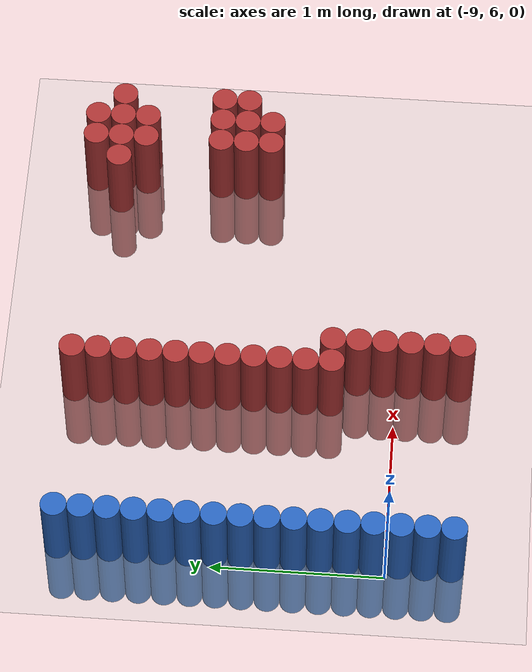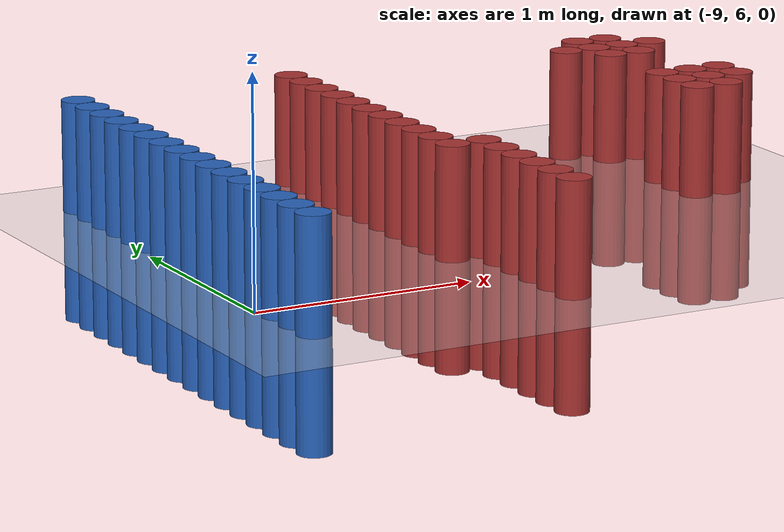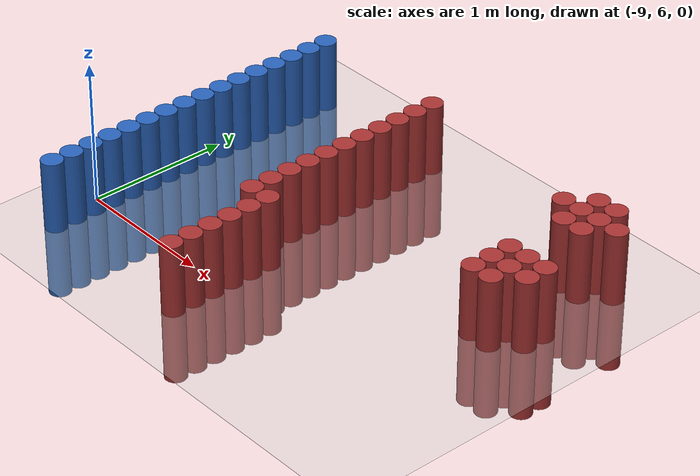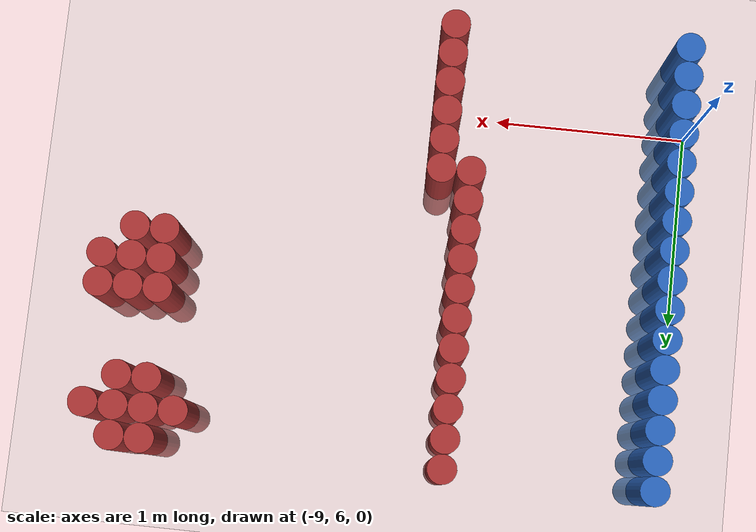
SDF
<sdf version="1.6">
 <world name="default">
  <model name="ground_plane">
   <static>1</static>
   <link name="link">
    <collision name="collision">
     <geometry><plane><normal>0 0 1</normal><size>100 100</size></plane></geometry>
     <surface><friction><ode><mu>100</mu><mu2>50</mu2></ode></friction></surface>
    </collision>
    <visual name="visual">
     <cast_shadows>0</cast_shadows>
     <geometry><plane><normal>0 0 1</normal><size>100 100</size></plane></geometry>
     <material>
      <script><uri>file://media/materials/scripts/gazebo.material</uri><name>Gazebo/Grey</name></script>
     </material>
    </visual>
   </link>
  </model>
  <model name="unit_cylinder_128">
   <static>1</static>
   <pose>-8.925000 5.625000 0.000000 0.000000 0.000000 0.000000</pose>
   <link name="link">
    <inertial>
     <mass>1</mass>
     <inertia><ixx>0.145833</ixx><ixy>0</ixy><ixz>0</ixz><iyy>0.145833</iyy><iyz>0</iyz><izz>0.125</izz></inertia>
    </inertial>
    <collision name="collision">
     <geometry><cylinder><radius>0.075000</radius><length>1</length></cylinder></geometry>
    </collision>
    <visual name="visual">
     <geometry><cylinder><radius>0.075000</radius><length>1</length></cylinder></geometry>
     <material>
      <ambient>0.152000 0.379000 0.720000 1</ambient>
      <diffuse>0.152000 0.379000 0.720000 1</diffuse>
     </material>
     <material>
      <script><name>Gazebo/Grey</name><uri>file://media/materials/scripts/gazebo.material</uri></script>
     </material>
    </visual>
   </link>
  </model>
  <model name="unit_cylinder_129">
   <static>1</static>
   <pose>-8.925000 5.775000 0.000000 0.000000 0.000000 0.000000</pose>
   <link name="link">
    <inertial>
     <mass>1</mass>
     <inertia><ixx>0.145833</ixx><ixy>0</ixy><ixz>0</ixz><iyy>0.145833</iyy><iyz>0</iyz><izz>0.125</izz></inertia>
    </inertial>
    <collision name="collision">
     <geometry><cylinder><radius>0.075000</radius><length>1</length></cylinder></geometry>
    </collision>
    <visual name="visual">
     <geometry><cylinder><radius>0.075000</radius><length>1</length></cylinder></geometry>
     <material>
      <ambient>0.152000 0.379000 0.720000 1</ambient>
      <diffuse>0.152000 0.379000 0.720000 1</diffuse>
     </material>
     <material>
      <script><name>Gazebo/Grey</name><uri>file://media/materials/scripts/gazebo.material</uri></script>
     </material>
    </visual>
   </link>
  </model>
  <model name="unit_cylinder_130">
   <static>1</static>
   <pose>-8.925000 5.925000 0.000000 0.000000 0.000000 0.000000</pose>
   <link name="link">
    <inertial>
     <mass>1</mass>
     <inertia><ixx>0.145833</ixx><ixy>0</ixy><ixz>0</ixz><iyy>0.145833</iyy><iyz>0</iyz><izz>0.125</izz></inertia>
    </inertial>
    <collision name="collision">
     <geometry><cylinder><radius>0.075000</radius><length>1</length></cylinder></geometry>
    </collision>
    <visual name="visual">
     <geometry><cylinder><radius>0.075000</radius><length>1</length></cylinder></geometry>
     <material>
      <ambient>0.152000 0.379000 0.720000 1</ambient>
      <diffuse>0.152000 0.379000 0.720000 1</diffuse>
     </material>
     <material>
      <script><name>Gazebo/Grey</name><uri>file://media/materials/scripts/gazebo.material</uri></script>
     </material>
    </visual>
   </link>
  </model>
  <model name="unit_cylinder_131">
   <static>1</static>
   <pose>-8.925000 6.075000 0.000000 0.000000 0.000000 0.000000</pose>
   <link name="link">
    <inertial>
     <mass>1</mass>
     <inertia><ixx>0.145833</ixx><ixy>0</ixy><ixz>0</ixz><iyy>0.145833</iyy><iyz>0</iyz><izz>0.125</izz></inertia>
    </inertial>
    <collision name="collision">
     <geometry><cylinder><radius>0.075000</radius><length>1</length></cylinder></geometry>
    </collision>
    <visual name="visual">
     <geometry><cylinder><radius>0.075000</radius><length>1</length></cylinder></geometry>
     <material>
      <ambient>0.152000 0.379000 0.720000 1</ambient>
      <diffuse>0.152000 0.379000 0.720000 1</diffuse>
     </material>
     <material>
      <script><name>Gazebo/Grey</name><uri>file://media/materials/scripts/gazebo.material</uri></script>
     </material>
    </visual>
   </link>
  </model>
  <model name="unit_cylinder_132">
   <static>1</static>
   <pose>-8.925000 6.225000 0.000000 0.000000 0.000000 0.000000</pose>
   <link name="link">
    <inertial>
     <mass>1</mass>
     <inertia><ixx>0.145833</ixx><ixy>0</ixy><ixz>0</ixz><iyy>0.145833</iyy><iyz>0</iyz><izz>0.125</izz></inertia>
    </inertial>
    <collision name="collision">
     <geometry><cylinder><radius>0.075000</radius><length>1</length></cylinder></geometry>
    </collision>
    <visual name="visual">
     <geometry><cylinder><radius>0.075000</radius><length>1</length></cylinder></geometry>
     <material>
      <ambient>0.152000 0.379000 0.720000 1</ambient>
      <diffuse>0.152000 0.379000 0.720000 1</diffuse>
     </material>
     <material>
      <script><name>Gazebo/Grey</name><uri>file://media/materials/scripts/gazebo.material</uri></script>
     </material>
    </visual>
   </link>
  </model>
  <model name="unit_cylinder_133">
   <static>1</static>
   <pose>-8.925000 6.375000 0.000000 0.000000 0.000000 0.000000</pose>
   <link name="link">
    <inertial>
     <mass>1</mass>
     <inertia><ixx>0.145833</ixx><ixy>0</ixy><ixz>0</ixz><iyy>0.145833</iyy><iyz>0</iyz><izz>0.125</izz></inertia>
    </inertial>
    <collision name="collision">
     <geometry><cylinder><radius>0.075000</radius><length>1</length></cylinder></geometry>
    </collision>
    <visual name="visual">
     <geometry><cylinder><radius>0.075000</radius><length>1</length></cylinder></geometry>
     <material>
      <ambient>0.152000 0.379000 0.720000 1</ambient>
      <diffuse>0.152000 0.379000 0.720000 1</diffuse>
     </material>
     <material>
      <script><name>Gazebo/Grey</name><uri>file://media/materials/scripts/gazebo.material</uri></script>
     </material>
    </visual>
   </link>
  </model>
  <model name="unit_cylinder_134">
   <static>1</static>
   <pose>-8.925000 6.525000 0.000000 0.000000 0.000000 0.000000</pose>
   <link name="link">
    <inertial>
     <mass>1</mass>
     <inertia><ixx>0.145833</ixx><ixy>0</ixy><ixz>0</ixz><iyy>0.145833</iyy><iyz>0</iyz><izz>0.125</izz></inertia>
    </inertial>
    <collision name="collision">
     <geometry><cylinder><radius>0.075000</radius><length>1</length></cylinder></geometry>
    </collision>
    <visual name="visual">
     <geometry><cylinder><radius>0.075000</radius><length>1</length></cylinder></geometry>
     <material>
      <ambient>0.152000 0.379000 0.720000 1</ambient>
      <diffuse>0.152000 0.379000 0.720000 1</diffuse>
     </material>
     <material>
      <script><name>Gazebo/Grey</name><uri>file://media/materials/scripts/gazebo.material</uri></script>
     </material>
    </visual>
   </link>
  </model>
  <model name="unit_cylinder_135">
   <static>1</static>
   <pose>-8.925000 6.675000 0.000000 0.000000 0.000000 0.000000</pose>
   <link name="link">
    <inertial>
     <mass>1</mass>
     <inertia><ixx>0.145833</ixx><ixy>0</ixy><ixz>0</ixz><iyy>0.145833</iyy><iyz>0</iyz><izz>0.125</izz></inertia>
    </inertial>
    <collision name="collision">
     <geometry><cylinder><radius>0.075000</radius><length>1</length></cylinder></geometry>
    </collision>
    <visual name="visual">
     <geometry><cylinder><radius>0.075000</radius><length>1</length></cylinder></geometry>
     <material>
      <ambient>0.152000 0.379000 0.720000 1</ambient>
      <diffuse>0.152000 0.379000 0.720000 1</diffuse>
     </material>
     <material>
      <script><name>Gazebo/Grey</name><uri>file://media/materials/scripts/gazebo.material</uri></script>
     </material>
    </visual>
   </link>
  </model>
  <model name="unit_cylinder_136">
   <static>1</static>
   <pose>-8.925000 6.825000 0.000000 0.000000 0.000000 0.000000</pose>
   <link name="link">
    <inertial>
     <mass>1</mass>
     <inertia><ixx>0.145833</ixx><ixy>0</ixy><ixz>0</ixz><iyy>0.145833</iyy><iyz>0</iyz><izz>0.125</izz></inertia>
    </inertial>
    <collision name="collision">
     <geometry><cylinder><radius>0.075000</radius><length>1</length></cylinder></geometry>
    </collision>
    <visual name="visual">
     <geometry><cylinder><radius>0.075000</radius><length>1</length></cylinder></geometry>
     <material>
      <ambient>0.152000 0.379000 0.720000 1</ambient>
      <diffuse>0.152000 0.379000 0.720000 1</diffuse>
     </material>
     <material>
      <script><name>Gazebo/Grey</name><uri>file://media/materials/scripts/gazebo.material</uri></script>
     </material>
    </visual>
   </link>
  </model>
  <model name="unit_cylinder_137">
   <static>1</static>
   <pose>-8.925000 6.975000 0.000000 0.000000 0.000000 0.000000</pose>
   <link name="link">
    <inertial>
     <mass>1</mass>
     <inertia><ixx>0.145833</ixx><ixy>0</ixy><ixz>0</ixz><iyy>0.145833</iyy><iyz>0</iyz><izz>0.125</izz></inertia>
    </inertial>
    <collision name="collision">
     <geometry><cylinder><radius>0.075000</radius><length>1</length></cylinder></geometry>
    </collision>
    <visual name="visual">
     <geometry><cylinder><radius>0.075000</radius><length>1</length></cylinder></geometry>
     <material>
      <ambient>0.152000 0.379000 0.720000 1</ambient>
      <diffuse>0.152000 0.379000 0.720000 1</diffuse>
     </material>
     <material>
      <script><name>Gazebo/Grey</name><uri>file://media/materials/scripts/gazebo.material</uri></script>
     </material>
    </visual>
   </link>
  </model>
  <model name="unit_cylinder_138">
   <static>1</static>
   <pose>-8.925000 7.125000 0.000000 0.000000 0.000000 0.000000</pose>
   <link name="link">
    <inertial>
     <mass>1</mass>
     <inertia><ixx>0.145833</ixx><ixy>0</ixy><ixz>0</ixz><iyy>0.145833</iyy><iyz>0</iyz><izz>0.125</izz></inertia>
    </inertial>
    <collision name="collision">
     <geometry><cylinder><radius>0.075000</radius><length>1</length></cylinder></geometry>
    </collision>
    <visual name="visual">
     <geometry><cylinder><radius>0.075000</radius><length>1</length></cylinder></geometry>
     <material>
      <ambient>0.152000 0.379000 0.720000 1</ambient>
      <diffuse>0.152000 0.379000 0.720000 1</diffuse>
     </material>
     <material>
      <script><name>Gazebo/Grey</name><uri>file://media/materials/scripts/gazebo.material</uri></script>
     </material>
    </visual>
   </link>
  </model>
  <model name="unit_cylinder_139">
   <static>1</static>
   <pose>-8.925000 7.275000 0.000000 0.000000 0.000000 0.000000</pose>
   <link name="link">
    <inertial>
     <mass>1</mass>
     <inertia><ixx>0.145833</ixx><ixy>0</ixy><ixz>0</ixz><iyy>0.145833</iyy><iyz>0</iyz><izz>0.125</izz></inertia>
    </inertial>
    <collision name="collision">
     <geometry><cylinder><radius>0.075000</radius><length>1</length></cylinder></geometry>
    </collision>
    <visual name="visual">
     <geometry><cylinder><radius>0.075000</radius><length>1</length></cylinder></geometry>
     <material>
      <ambient>0.152000 0.379000 0.720000 1</ambient>
      <diffuse>0.152000 0.379000 0.720000 1</diffuse>
     </material>
     <material>
      <script><name>Gazebo/Grey</name><uri>file://media/materials/scripts/gazebo.material</uri></script>
     </material>
    </visual>
   </link>
  </model>
  <model name="unit_cylinder_140">
   <static>1</static>
   <pose>-8.925000 7.425000 0.000000 0.000000 0.000000 0.000000</pose>
   <link name="link">
    <inertial>
     <mass>1</mass>
     <inertia><ixx>0.145833</ixx><ixy>0</ixy><ixz>0</ixz><iyy>0.145833</iyy><iyz>0</iyz><izz>0.125</izz></inertia>
    </inertial>
    <collision name="collision">
     <geometry><cylinder><radius>0.075000</radius><length>1</length></cylinder></geometry>
    </collision>
    <visual name="visual">
     <geometry><cylinder><radius>0.075000</radius><length>1</length></cylinder></geometry>
     <material>
      <ambient>0.152000 0.379000 0.720000 1</ambient>
      <diffuse>0.152000 0.379000 0.720000 1</diffuse>
     </material>
     <material>
      <script><name>Gazebo/Grey</name><uri>file://media/materials/scripts/gazebo.material</uri></script>
     </material>
    </visual>
   </link>
  </model>
  <model name="unit_cylinder_141">
   <static>1</static>
   <pose>-8.925000 7.575000 0.000000 0.000000 0.000000 0.000000</pose>
   <link name="link">
    <inertial>
     <mass>1</mass>
     <inertia><ixx>0.145833</ixx><ixy>0</ixy><ixz>0</ixz><iyy>0.145833</iyy><iyz>0</iyz><izz>0.125</izz></inertia>
    </inertial>
    <collision name="collision">
     <geometry><cylinder><radius>0.075000</radius><length>1</length></cylinder></geometry>
    </collision>
    <visual name="visual">
     <geometry><cylinder><radius>0.075000</radius><length>1</length></cylinder></geometry>
     <material>
      <ambient>0.152000 0.379000 0.720000 1</ambient>
      <diffuse>0.152000 0.379000 0.720000 1</diffuse>
     </material>
     <material>
      <script><name>Gazebo/Grey</name><uri>file://media/materials/scripts/gazebo.material</uri></script>
     </material>
    </visual>
   </link>
  </model>
  <model name="unit_cylinder_142">
   <static>1</static>
   <pose>-8.925000 7.725000 0.000000 0.000000 0.000000 0.000000</pose>
   <link name="link">
    <inertial>
     <mass>1</mass>
     <inertia><ixx>0.145833</ixx><ixy>0</ixy><ixz>0</ixz><iyy>0.145833</iyy><iyz>0</iyz><izz>0.125</izz></inertia>
    </inertial>
    <collision name="collision">
     <geometry><cylinder><radius>0.075000</radius><length>1</length></cylinder></geometry>
    </collision>
    <visual name="visual">
     <geometry><cylinder><radius>0.075000</radius><length>1</length></cylinder></geometry>
     <material>
      <ambient>0.152000 0.379000 0.720000 1</ambient>
      <diffuse>0.152000 0.379000 0.720000 1</diffuse>
     </material>
     <material>
      <script><name>Gazebo/Grey</name><uri>file://media/materials/scripts/gazebo.material</uri></script>
     </material>
    </visual>
   </link>
  </model>
  <model name="unit_cylinder_143">
   <static>1</static>
   <pose>-8.925000 7.875000 0.000000 0.000000 0.000000 0.000000</pose>
   <link name="link">
    <inertial>
     <mass>1</mass>
     <inertia><ixx>0.145833</ixx><ixy>0</ixy><ixz>0</ixz><iyy>0.145833</iyy><iyz>0</iyz><izz>0.125</izz></inertia>
    </inertial>
    <collision name="collision">
     <geometry><cylinder><radius>0.075000</radius><length>1</length></cylinder></geometry>
    </collision>
    <visual name="visual">
     <geometry><cylinder><radius>0.075000</radius><length>1</length></cylinder></geometry>
     <material>
      <ambient>0.152000 0.379000 0.720000 1</ambient>
      <diffuse>0.152000 0.379000 0.720000 1</diffuse>
     </material>
     <material>
      <script><name>Gazebo/Grey</name><uri>file://media/materials/scripts/gazebo.material</uri></script>
     </material>
    </visual>
   </link>
  </model>
  <model name="unit_cylinder_168">
   <static>1</static>
   <pose>-7.875000 6.375000 0.000000 0.000000 0.000000 0.000000</pose>
   <link name="link">
    <inertial>
     <mass>1</mass>
     <inertia><ixx>0.145833</ixx><ixy>0</ixy><ixz>0</ixz><iyy>0.145833</iyy><iyz>0</iyz><izz>0.125</izz></inertia>
    </inertial>
    <collision name="collision">
     <geometry><cylinder><radius>0.075000</radius><length>1</length></cylinder></geometry>
    </collision>
    <visual name="visual">
     <geometry><cylinder><radius>0.075000</radius><length>1</length></cylinder></geometry>
     <material>
      <ambient>0.648000 0.192000 0.192000 1</ambient>
      <diffuse>0.648000 0.192000 0.192000 1</diffuse>
     </material>
     <material>
      <script><name>Gazebo/Grey</name><uri>file://media/materials/scripts/gazebo.material</uri></script>
     </material>
    </visual>
   </link>
  </model>
  <model name="unit_cylinder_169">
   <static>1</static>
   <pose>-7.875000 6.525000 0.000000 0.000000 0.000000 0.000000</pose>
   <link name="link">
    <inertial>
     <mass>1</mass>
     <inertia><ixx>0.145833</ixx><ixy>0</ixy><ixz>0</ixz><iyy>0.145833</iyy><iyz>0</iyz><izz>0.125</izz></inertia>
    </inertial>
    <collision name="collision">
     <geometry><cylinder><radius>0.075000</radius><length>1</length></cylinder></geometry>
    </collision>
    <visual name="visual">
     <geometry><cylinder><radius>0.075000</radius><length>1</length></cylinder></geometry>
     <material>
      <ambient>0.648000 0.192000 0.192000 1</ambient>
      <diffuse>0.648000 0.192000 0.192000 1</diffuse>
     </material>
     <material>
      <script><name>Gazebo/Grey</name><uri>file://media/materials/scripts/gazebo.material</uri></script>
     </material>
    </visual>
   </link>
  </model>
  <model name="unit_cylinder_170">
   <static>1</static>
   <pose>-7.875000 6.675000 0.000000 0.000000 0.000000 0.000000</pose>
   <link name="link">
    <inertial>
     <mass>1</mass>
     <inertia><ixx>0.145833</ixx><ixy>0</ixy><ixz>0</ixz><iyy>0.145833</iyy><iyz>0</iyz><izz>0.125</izz></inertia>
    </inertial>
    <collision name="collision">
     <geometry><cylinder><radius>0.075000</radius><length>1</length></cylinder></geometry>
    </collision>
    <visual name="visual">
     <geometry><cylinder><radius>0.075000</radius><length>1</length></cylinder></geometry>
     <material>
      <ambient>0.648000 0.192000 0.192000 1</ambient>
      <diffuse>0.648000 0.192000 0.192000 1</diffuse>
     </material>
     <material>
      <script><name>Gazebo/Grey</name><uri>file://media/materials/scripts/gazebo.material</uri></script>
     </material>
    </visual>
   </link>
  </model>
  <model name="unit_cylinder_171">
   <static>1</static>
   <pose>-7.875000 6.825000 0.000000 0.000000 0.000000 0.000000</pose>
   <link name="link">
    <inertial>
     <mass>1</mass>
     <inertia><ixx>0.145833</ixx><ixy>0</ixy><ixz>0</ixz><iyy>0.145833</iyy><iyz>0</iyz><izz>0.125</izz></inertia>
    </inertial>
    <collision name="collision">
     <geometry><cylinder><radius>0.075000</radius><length>1</length></cylinder></geometry>
    </collision>
    <visual name="visual">
     <geometry><cylinder><radius>0.075000</radius><length>1</length></cylinder></geometry>
     <material>
      <ambient>0.648000 0.192000 0.192000 1</ambient>
      <diffuse>0.648000 0.192000 0.192000 1</diffuse>
     </material>
     <material>
      <script><name>Gazebo/Grey</name><uri>file://media/materials/scripts/gazebo.material</uri></script>
     </material>
    </visual>
   </link>
  </model>
  <model name="unit_cylinder_172">
   <static>1</static>
   <pose>-7.875000 6.975000 0.000000 0.000000 0.000000 0.000000</pose>
   <link name="link">
    <inertial>
     <mass>1</mass>
     <inertia><ixx>0.145833</ixx><ixy>0</ixy><ixz>0</ixz><iyy>0.145833</iyy><iyz>0</iyz><izz>0.125</izz></inertia>
    </inertial>
    <collision name="collision">
     <geometry><cylinder><radius>0.075000</radius><length>1</length></cylinder></geometry>
    </collision>
    <visual name="visual">
     <geometry><cylinder><radius>0.075000</radius><length>1</length></cylinder></geometry>
     <material>
      <ambient>0.648000 0.192000 0.192000 1</ambient>
      <diffuse>0.648000 0.192000 0.192000 1</diffuse>
     </material>
     <material>
      <script><name>Gazebo/Grey</name><uri>file://media/materials/scripts/gazebo.material</uri></script>
     </material>
    </visual>
   </link>
  </model>
  <model name="unit_cylinder_173">
   <static>1</static>
   <pose>-7.875000 7.125000 0.000000 0.000000 0.000000 0.000000</pose>
   <link name="link">
    <inertial>
     <mass>1</mass>
     <inertia><ixx>0.145833</ixx><ixy>0</ixy><ixz>0</ixz><iyy>0.145833</iyy><iyz>0</iyz><izz>0.125</izz></inertia>
    </inertial>
    <collision name="collision">
     <geometry><cylinder><radius>0.075000</radius><length>1</length></cylinder></geometry>
    </collision>
    <visual name="visual">
     <geometry><cylinder><radius>0.075000</radius><length>1</length></cylinder></geometry>
     <material>
      <ambient>0.648000 0.192000 0.192000 1</ambient>
      <diffuse>0.648000 0.192000 0.192000 1</diffuse>
     </material>
     <material>
      <script><name>Gazebo/Grey</name><uri>file://media/materials/scripts/gazebo.material</uri></script>
     </material>
    </visual>
   </link>
  </model>
  <model name="unit_cylinder_174">
   <static>1</static>
   <pose>-7.875000 7.275000 0.000000 0.000000 0.000000 0.000000</pose>
   <link name="link">
    <inertial>
     <mass>1</mass>
     <inertia><ixx>0.145833</ixx><ixy>0</ixy><ixz>0</ixz><iyy>0.145833</iyy><iyz>0</iyz><izz>0.125</izz></inertia>
    </inertial>
    <collision name="collision">
     <geometry><cylinder><radius>0.075000</radius><length>1</length></cylinder></geometry>
    </collision>
    <visual name="visual">
     <geometry><cylinder><radius>0.075000</radius><length>1</length></cylinder></geometry>
     <material>
      <ambient>0.648000 0.192000 0.192000 1</ambient>
      <diffuse>0.648000 0.192000 0.192000 1</diffuse>
     </material>
     <material>
      <script><name>Gazebo/Grey</name><uri>file://media/materials/scripts/gazebo.material</uri></script>
     </material>
    </visual>
   </link>
  </model>
  <model name="unit_cylinder_175">
   <static>1</static>
   <pose>-7.875000 7.425000 0.000000 0.000000 0.000000 0.000000</pose>
   <link name="link">
    <inertial>
     <mass>1</mass>
     <inertia><ixx>0.145833</ixx><ixy>0</ixy><ixz>0</ixz><iyy>0.145833</iyy><iyz>0</iyz><izz>0.125</izz></inertia>
    </inertial>
    <collision name="collision">
     <geometry><cylinder><radius>0.075000</radius><length>1</length></cylinder></geometry>
    </collision>
    <visual name="visual">
     <geometry><cylinder><radius>0.075000</radius><length>1</length></cylinder></geometry>
     <material>
      <ambient>0.648000 0.192000 0.192000 1</ambient>
      <diffuse>0.648000 0.192000 0.192000 1</diffuse>
     </material>
     <material>
      <script><name>Gazebo/Grey</name><uri>file://media/materials/scripts/gazebo.material</uri></script>
     </material>
    </visual>
   </link>
  </model>
  <model name="unit_cylinder_176">
   <static>1</static>
   <pose>-7.875000 7.575000 0.000000 0.000000 0.000000 0.000000</pose>
   <link name="link">
    <inertial>
     <mass>1</mass>
     <inertia><ixx>0.145833</ixx><ixy>0</ixy><ixz>0</ixz><iyy>0.145833</iyy><iyz>0</iyz><izz>0.125</izz></inertia>
    </inertial>
    <collision name="collision">
     <geometry><cylinder><radius>0.075000</radius><length>1</length></cylinder></geometry>
    </collision>
    <visual name="visual">
     <geometry><cylinder><radius>0.075000</radius><length>1</length></cylinder></geometry>
     <material>
      <ambient>0.648000 0.192000 0.192000 1</ambient>
      <diffuse>0.648000 0.192000 0.192000 1</diffuse>
     </material>
     <material>
      <script><name>Gazebo/Grey</name><uri>file://media/materials/scripts/gazebo.material</uri></script>
     </material>
    </visual>
   </link>
  </model>
  <model name="unit_cylinder_177">
   <static>1</static>
   <pose>-7.875000 7.725000 0.000000 0.000000 0.000000 0.000000</pose>
   <link name="link">
    <inertial>
     <mass>1</mass>
     <inertia><ixx>0.145833</ixx><ixy>0</ixy><ixz>0</ixz><iyy>0.145833</iyy><iyz>0</iyz><izz>0.125</izz></inertia>
    </inertial>
    <collision name="collision">
     <geometry><cylinder><radius>0.075000</radius><length>1</length></cylinder></geometry>
    </collision>
    <visual name="visual">
     <geometry><cylinder><radius>0.075000</radius><length>1</length></cylinder></geometry>
     <material>
      <ambient>0.648000 0.192000 0.192000 1</ambient>
      <diffuse>0.648000 0.192000 0.192000 1</diffuse>
     </material>
     <material>
      <script><name>Gazebo/Grey</name><uri>file://media/materials/scripts/gazebo.material</uri></script>
     </material>
    </visual>
   </link>
  </model>
  <model name="unit_cylinder_178">
   <static>1</static>
   <pose>-7.875000 7.875000 0.000000 0.000000 0.000000 0.000000</pose>
   <link name="link">
    <inertial>
     <mass>1</mass>
     <inertia><ixx>0.145833</ixx><ixy>0</ixy><ixz>0</ixz><iyy>0.145833</iyy><iyz>0</iyz><izz>0.125</izz></inertia>
    </inertial>
    <collision name="collision">
     <geometry><cylinder><radius>0.075000</radius><length>1</length></cylinder></geometry>
    </collision>
    <visual name="visual">
     <geometry><cylinder><radius>0.075000</radius><length>1</length></cylinder></geometry>
     <material>
      <ambient>0.648000 0.192000 0.192000 1</ambient>
      <diffuse>0.648000 0.192000 0.192000 1</diffuse>
     </material>
     <material>
      <script><name>Gazebo/Grey</name><uri>file://media/materials/scripts/gazebo.material</uri></script>
     </material>
    </visual>
   </link>
  </model>
  <model name="unit_cylinder_192">
   <static>1</static>
   <pose>-7.725000 5.625000 0.000000 0.000000 0.000000 0.000000</pose>
   <link name="link">
    <inertial>
     <mass>1</mass>
     <inertia><ixx>0.145833</ixx><ixy>0</ixy><ixz>0</ixz><iyy>0.145833</iyy><iyz>0</iyz><izz>0.125</izz></inertia>
    </inertial>
    <collision name="collision">
     <geometry><cylinder><radius>0.075000</radius><length>1</length></cylinder></geometry>
    </collision>
    <visual name="visual">
     <geometry><cylinder><radius>0.075000</radius><length>1</length></cylinder></geometry>
     <material>
      <ambient>0.648000 0.192000 0.192000 1</ambient>
      <diffuse>0.648000 0.192000 0.192000 1</diffuse>
     </material>
     <material>
      <script><name>Gazebo/Grey</name><uri>file://media/materials/scripts/gazebo.material</uri></script>
     </material>
    </visual>
   </link>
  </model>
  <model name="unit_cylinder_193">
   <static>1</static>
   <pose>-7.725000 5.775000 0.000000 0.000000 0.000000 0.000000</pose>
   <link name="link">
    <inertial>
     <mass>1</mass>
     <inertia><ixx>0.145833</ixx><ixy>0</ixy><ixz>0</ixz><iyy>0.145833</iyy><iyz>0</iyz><izz>0.125</izz></inertia>
    </inertial>
    <collision name="collision">
     <geometry><cylinder><radius>0.075000</radius><length>1</length></cylinder></geometry>
    </collision>
    <visual name="visual">
     <geometry><cylinder><radius>0.075000</radius><length>1</length></cylinder></geometry>
     <material>
      <ambient>0.648000 0.192000 0.192000 1</ambient>
      <diffuse>0.648000 0.192000 0.192000 1</diffuse>
     </material>
     <material>
      <script><name>Gazebo/Grey</name><uri>file://media/materials/scripts/gazebo.material</uri></script>
     </material>
    </visual>
   </link>
  </model>
  <model name="unit_cylinder_194">
   <static>1</static>
   <pose>-7.725000 5.925000 0.000000 0.000000 0.000000 0.000000</pose>
   <link name="link">
    <inertial>
     <mass>1</mass>
     <inertia><ixx>0.145833</ixx><ixy>0</ixy><ixz>0</ixz><iyy>0.145833</iyy><iyz>0</iyz><izz>0.125</izz></inertia>
    </inertial>
    <collision name="collision">
     <geometry><cylinder><radius>0.075000</radius><length>1</length></cylinder></geometry>
    </collision>
    <visual name="visual">
     <geometry><cylinder><radius>0.075000</radius><length>1</length></cylinder></geometry>
     <material>
      <ambient>0.648000 0.192000 0.192000 1</ambient>
      <diffuse>0.648000 0.192000 0.192000 1</diffuse>
     </material>
     <material>
      <script><name>Gazebo/Grey</name><uri>file://media/materials/scripts/gazebo.material</uri></script>
     </material>
    </visual>
   </link>
  </model>
  <model name="unit_cylinder_195">
   <static>1</static>
   <pose>-7.725000 6.075000 0.000000 0.000000 0.000000 0.000000</pose>
   <link name="link">
    <inertial>
     <mass>1</mass>
     <inertia><ixx>0.145833</ixx><ixy>0</ixy><ixz>0</ixz><iyy>0.145833</iyy><iyz>0</iyz><izz>0.125</izz></inertia>
    </inertial>
    <collision name="collision">
     <geometry><cylinder><radius>0.075000</radius><length>1</length></cylinder></geometry>
    </collision>
    <visual name="visual">
     <geometry><cylinder><radius>0.075000</radius><length>1</length></cylinder></geometry>
     <material>
      <ambient>0.648000 0.192000 0.192000 1</ambient>
      <diffuse>0.648000 0.192000 0.192000 1</diffuse>
     </material>
     <material>
      <script><name>Gazebo/Grey</name><uri>file://media/materials/scripts/gazebo.material</uri></script>
     </material>
    </visual>
   </link>
  </model>
  <model name="unit_cylinder_196">
   <static>1</static>
   <pose>-7.725000 6.225000 0.000000 0.000000 0.000000 0.000000</pose>
   <link name="link">
    <inertial>
     <mass>1</mass>
     <inertia><ixx>0.145833</ixx><ixy>0</ixy><ixz>0</ixz><iyy>0.145833</iyy><iyz>0</iyz><izz>0.125</izz></inertia>
    </inertial>
    <collision name="collision">
     <geometry><cylinder><radius>0.075000</radius><length>1</length></cylinder></geometry>
    </collision>
    <visual name="visual">
     <geometry><cylinder><radius>0.075000</radius><length>1</length></cylinder></geometry>
     <material>
      <ambient>0.648000 0.192000 0.192000 1</ambient>
      <diffuse>0.648000 0.192000 0.192000 1</diffuse>
     </material>
     <material>
      <script><name>Gazebo/Grey</name><uri>file://media/materials/scripts/gazebo.material</uri></script>
     </material>
    </visual>
   </link>
  </model>
  <model name="unit_cylinder_197">
   <static>1</static>
   <pose>-7.725000 6.375000 0.000000 0.000000 0.000000 0.000000</pose>
   <link name="link">
    <inertial>
     <mass>1</mass>
     <inertia><ixx>0.145833</ixx><ixy>0</ixy><ixz>0</ixz><iyy>0.145833</iyy><iyz>0</iyz><izz>0.125</izz></inertia>
    </inertial>
    <collision name="collision">
     <geometry><cylinder><radius>0.075000</radius><length>1</length></cylinder></geometry>
    </collision>
    <visual name="visual">
     <geometry><cylinder><radius>0.075000</radius><length>1</length></cylinder></geometry>
     <material>
      <ambient>0.648000 0.192000 0.192000 1</ambient>
      <diffuse>0.648000 0.192000 0.192000 1</diffuse>
     </material>
     <material>
      <script><name>Gazebo/Grey</name><uri>file://media/materials/scripts/gazebo.material</uri></script>
     </material>
    </visual>
   </link>
  </model>
  <model name="unit_cylinder_215">
   <static>1</static>
   <pose>-6.525000 7.725000 0.000000 0.000000 0.000000 0.000000</pose>
   <link name="link">
    <inertial>
     <mass>1</mass>
     <inertia><ixx>0.145833</ixx><ixy>0</ixy><ixz>0</ixz><iyy>0.145833</iyy><iyz>0</iyz><izz>0.125</izz></inertia>
    </inertial>
    <collision name="collision">
     <geometry><cylinder><radius>0.075000</radius><length>1</length></cylinder></geometry>
    </collision>
    <visual name="visual">
     <geometry><cylinder><radius>0.075000</radius><length>1</length></cylinder></geometry>
     <material>
      <ambient>0.648000 0.192000 0.192000 1</ambient>
      <diffuse>0.648000 0.192000 0.192000 1</diffuse>
     </material>
     <material>
      <script><name>Gazebo/Grey</name><uri>file://media/materials/scripts/gazebo.material</uri></script>
     </material>
    </visual>
   </link>
  </model>
  <model name="unit_cylinder_220">
   <static>1</static>
   <pose>-6.375000 6.825000 0.000000 0.000000 0.000000 0.000000</pose>
   <link name="link">
    <inertial>
     <mass>1</mass>
     <inertia><ixx>0.145833</ixx><ixy>0</ixy><ixz>0</ixz><iyy>0.145833</iyy><iyz>0</iyz><izz>0.125</izz></inertia>
    </inertial>
    <collision name="collision">
     <geometry><cylinder><radius>0.075000</radius><length>1</length></cylinder></geometry>
    </collision>
    <visual name="visual">
     <geometry><cylinder><radius>0.075000</radius><length>1</length></cylinder></geometry>
     <material>
      <ambient>0.648000 0.192000 0.192000 1</ambient>
      <diffuse>0.648000 0.192000 0.192000 1</diffuse>
     </material>
     <material>
      <script><name>Gazebo/Grey</name><uri>file://media/materials/scripts/gazebo.material</uri></script>
     </material>
    </visual>
   </link>
  </model>
  <model name="unit_cylinder_221">
   <static>1</static>
   <pose>-6.375000 6.975000 0.000000 0.000000 0.000000 0.000000</pose>
   <link name="link">
    <inertial>
     <mass>1</mass>
     <inertia><ixx>0.145833</ixx><ixy>0</ixy><ixz>0</ixz><iyy>0.145833</iyy><iyz>0</iyz><izz>0.125</izz></inertia>
    </inertial>
    <collision name="collision">
     <geometry><cylinder><radius>0.075000</radius><length>1</length></cylinder></geometry>
    </collision>
    <visual name="visual">
     <geometry><cylinder><radius>0.075000</radius><length>1</length></cylinder></geometry>
     <material>
      <ambient>0.648000 0.192000 0.192000 1</ambient>
      <diffuse>0.648000 0.192000 0.192000 1</diffuse>
     </material>
     <material>
      <script><name>Gazebo/Grey</name><uri>file://media/materials/scripts/gazebo.material</uri></script>
     </material>
    </visual>
   </link>
  </model>
  <model name="unit_cylinder_222">
   <static>1</static>
   <pose>-6.375000 7.125000 0.000000 0.000000 0.000000 0.000000</pose>
   <link name="link">
    <inertial>
     <mass>1</mass>
     <inertia><ixx>0.145833</ixx><ixy>0</ixy><ixz>0</ixz><iyy>0.145833</iyy><iyz>0</iyz><izz>0.125</izz></inertia>
    </inertial>
    <collision name="collision">
     <geometry><cylinder><radius>0.075000</radius><length>1</length></cylinder></geometry>
    </collision>
    <visual name="visual">
     <geometry><cylinder><radius>0.075000</radius><length>1</length></cylinder></geometry>
     <material>
      <ambient>0.648000 0.192000 0.192000 1</ambient>
      <diffuse>0.648000 0.192000 0.192000 1</diffuse>
     </material>
     <material>
      <script><name>Gazebo/Grey</name><uri>file://media/materials/scripts/gazebo.material</uri></script>
     </material>
    </visual>
   </link>
  </model>
  <model name="unit_cylinder_223">
   <static>1</static>
   <pose>-6.375000 7.575000 0.000000 0.000000 0.000000 0.000000</pose>
   <link name="link">
    <inertial>
     <mass>1</mass>
     <inertia><ixx>0.145833</ixx><ixy>0</ixy><ixz>0</ixz><iyy>0.145833</iyy><iyz>0</iyz><izz>0.125</izz></inertia>
    </inertial>
    <collision name="collision">
     <geometry><cylinder><radius>0.075000</radius><length>1</length></cylinder></geometry>
    </collision>
    <visual name="visual">
     <geometry><cylinder><radius>0.075000</radius><length>1</length></cylinder></geometry>
     <material>
      <ambient>0.648000 0.192000 0.192000 1</ambient>
      <diffuse>0.648000 0.192000 0.192000 1</diffuse>
     </material>
     <material>
      <script><name>Gazebo/Grey</name><uri>file://media/materials/scripts/gazebo.material</uri></script>
     </material>
    </visual>
   </link>
  </model>
  <model name="unit_cylinder_224">
   <static>1</static>
   <pose>-6.375000 7.725000 0.000000 0.000000 0.000000 0.000000</pose>
   <link name="link">
    <inertial>
     <mass>1</mass>
     <inertia><ixx>0.145833</ixx><ixy>0</ixy><ixz>0</ixz><iyy>0.145833</iyy><iyz>0</iyz><izz>0.125</izz></inertia>
    </inertial>
    <collision name="collision">
     <geometry><cylinder><radius>0.075000</radius><length>1</length></cylinder></geometry>
    </collision>
    <visual name="visual">
     <geometry><cylinder><radius>0.075000</radius><length>1</length></cylinder></geometry>
     <material>
      <ambient>0.648000 0.192000 0.192000 1</ambient>
      <diffuse>0.648000 0.192000 0.192000 1</diffuse>
     </material>
     <material>
      <script><name>Gazebo/Grey</name><uri>file://media/materials/scripts/gazebo.material</uri></script>
     </material>
    </visual>
   </link>
  </model>
  <model name="unit_cylinder_225">
   <static>1</static>
   <pose>-6.375000 7.875000 0.000000 0.000000 0.000000 0.000000</pose>
   <link name="link">
    <inertial>
     <mass>1</mass>
     <inertia><ixx>0.145833</ixx><ixy>0</ixy><ixz>0</ixz><iyy>0.145833</iyy><iyz>0</iyz><izz>0.125</izz></inertia>
    </inertial>
    <collision name="collision">
     <geometry><cylinder><radius>0.075000</radius><length>1</length></cylinder></geometry>
    </collision>
    <visual name="visual">
     <geometry><cylinder><radius>0.075000</radius><length>1</length></cylinder></geometry>
     <material>
      <ambient>0.648000 0.192000 0.192000 1</ambient>
      <diffuse>0.648000 0.192000 0.192000 1</diffuse>
     </material>
     <material>
      <script><name>Gazebo/Grey</name><uri>file://media/materials/scripts/gazebo.material</uri></script>
     </material>
    </visual>
   </link>
  </model>
  <model name="unit_cylinder_230">
   <static>1</static>
   <pose>-6.225000 6.825000 0.000000 0.000000 0.000000 0.000000</pose>
   <link name="link">
    <inertial>
     <mass>1</mass>
     <inertia><ixx>0.145833</ixx><ixy>0</ixy><ixz>0</ixz><iyy>0.145833</iyy><iyz>0</iyz><izz>0.125</izz></inertia>
    </inertial>
    <collision name="collision">
     <geometry><cylinder><radius>0.075000</radius><length>1</length></cylinder></geometry>
    </collision>
    <visual name="visual">
     <geometry><cylinder><radius>0.075000</radius><length>1</length></cylinder></geometry>
     <material>
      <ambient>0.648000 0.192000 0.192000 1</ambient>
      <diffuse>0.648000 0.192000 0.192000 1</diffuse>
     </material>
     <material>
      <script><name>Gazebo/Grey</name><uri>file://media/materials/scripts/gazebo.material</uri></script>
     </material>
    </visual>
   </link>
  </model>
  <model name="unit_cylinder_231">
   <static>1</static>
   <pose>-6.225000 6.975000 0.000000 0.000000 0.000000 0.000000</pose>
   <link name="link">
    <inertial>
     <mass>1</mass>
     <inertia><ixx>0.145833</ixx><ixy>0</ixy><ixz>0</ixz><iyy>0.145833</iyy><iyz>0</iyz><izz>0.125</izz></inertia>
    </inertial>
    <collision name="collision">
     <geometry><cylinder><radius>0.075000</radius><length>1</length></cylinder></geometry>
    </collision>
    <visual name="visual">
     <geometry><cylinder><radius>0.075000</radius><length>1</length></cylinder></geometry>
     <material>
      <ambient>0.648000 0.192000 0.192000 1</ambient>
      <diffuse>0.648000 0.192000 0.192000 1</diffuse>
     </material>
     <material>
      <script><name>Gazebo/Grey</name><uri>file://media/materials/scripts/gazebo.material</uri></script>
     </material>
    </visual>
   </link>
  </model>
  <model name="unit_cylinder_232">
   <static>1</static>
   <pose>-6.225000 7.125000 0.000000 0.000000 0.000000 0.000000</pose>
   <link name="link">
    <inertial>
     <mass>1</mass>
     <inertia><ixx>0.145833</ixx><ixy>0</ixy><ixz>0</ixz><iyy>0.145833</iyy><iyz>0</iyz><izz>0.125</izz></inertia>
    </inertial>
    <collision name="collision">
     <geometry><cylinder><radius>0.075000</radius><length>1</length></cylinder></geometry>
    </collision>
    <visual name="visual">
     <geometry><cylinder><radius>0.075000</radius><length>1</length></cylinder></geometry>
     <material>
      <ambient>0.648000 0.192000 0.192000 1</ambient>
      <diffuse>0.648000 0.192000 0.192000 1</diffuse>
     </material>
     <material>
      <script><name>Gazebo/Grey</name><uri>file://media/materials/scripts/gazebo.material</uri></script>
     </material>
    </visual>
   </link>
  </model>
  <model name="unit_cylinder_233">
   <static>1</static>
   <pose>-6.225000 7.575000 0.000000 0.000000 0.000000 0.000000</pose>
   <link name="link">
    <inertial>
     <mass>1</mass>
     <inertia><ixx>0.145833</ixx><ixy>0</ixy><ixz>0</ixz><iyy>0.145833</iyy><iyz>0</iyz><izz>0.125</izz></inertia>
    </inertial>
    <collision name="collision">
     <geometry><cylinder><radius>0.075000</radius><length>1</length></cylinder></geometry>
    </collision>
    <visual name="visual">
     <geometry><cylinder><radius>0.075000</radius><length>1</length></cylinder></geometry>
     <material>
      <ambient>0.648000 0.192000 0.192000 1</ambient>
      <diffuse>0.648000 0.192000 0.192000 1</diffuse>
     </material>
     <material>
      <script><name>Gazebo/Grey</name><uri>file://media/materials/scripts/gazebo.material</uri></script>
     </material>
    </visual>
   </link>
  </model>
  <model name="unit_cylinder_234">
   <static>1</static>
   <pose>-6.225000 7.725000 0.000000 0.000000 0.000000 0.000000</pose>
   <link name="link">
    <inertial>
     <mass>1</mass>
     <inertia><ixx>0.145833</ixx><ixy>0</ixy><ixz>0</ixz><iyy>0.145833</iyy><iyz>0</iyz><izz>0.125</izz></inertia>
    </inertial>
    <collision name="collision">
     <geometry><cylinder><radius>0.075000</radius><length>1</length></cylinder></geometry>
    </collision>
    <visual name="visual">
     <geometry><cylinder><radius>0.075000</radius><length>1</length></cylinder></geometry>
     <material>
      <ambient>0.648000 0.192000 0.192000 1</ambient>
      <diffuse>0.648000 0.192000 0.192000 1</diffuse>
     </material>
     <material>
      <script><name>Gazebo/Grey</name><uri>file://media/materials/scripts/gazebo.material</uri></script>
     </material>
    </visual>
   </link>
  </model>
  <model name="unit_cylinder_235">
   <static>1</static>
   <pose>-6.225000 7.875000 0.000000 0.000000 0.000000 0.000000</pose>
   <link name="link">
    <inertial>
     <mass>1</mass>
     <inertia><ixx>0.145833</ixx><ixy>0</ixy><ixz>0</ixz><iyy>0.145833</iyy><iyz>0</iyz><izz>0.125</izz></inertia>
    </inertial>
    <collision name="collision">
     <geometry><cylinder><radius>0.075000</radius><length>1</length></cylinder></geometry>
    </collision>
    <visual name="visual">
     <geometry><cylinder><radius>0.075000</radius><length>1</length></cylinder></geometry>
     <material>
      <ambient>0.648000 0.192000 0.192000 1</ambient>
      <diffuse>0.648000 0.192000 0.192000 1</diffuse>
     </material>
     <material>
      <script><name>Gazebo/Grey</name><uri>file://media/materials/scripts/gazebo.material</uri></script>
     </material>
    </visual>
   </link>
  </model>
  <model name="unit_cylinder_238">
   <static>1</static>
   <pose>-6.075000 6.975000 0.000000 0.000000 0.000000 0.000000</pose>
   <link name="link">
    <inertial>
     <mass>1</mass>
     <inertia><ixx>0.145833</ixx><ixy>0</ixy><ixz>0</ixz><iyy>0.145833</iyy><iyz>0</iyz><izz>0.125</izz></inertia>
    </inertial>
    <collision name="collision">
     <geometry><cylinder><radius>0.075000</radius><length>1</length></cylinder></geometry>
    </collision>
    <visual name="visual">
     <geometry><cylinder><radius>0.075000</radius><length>1</length></cylinder></geometry>
     <material>
      <ambient>0.648000 0.192000 0.192000 1</ambient>
      <diffuse>0.648000 0.192000 0.192000 1</diffuse>
     </material>
     <material>
      <script><name>Gazebo/Grey</name><uri>file://media/materials/scripts/gazebo.material</uri></script>
     </material>
    </visual>
   </link>
  </model>
  <model name="unit_cylinder_239">
   <static>1</static>
   <pose>-6.075000 7.125000 0.000000 0.000000 0.000000 0.000000</pose>
   <link name="link">
    <inertial>
     <mass>1</mass>
     <inertia><ixx>0.145833</ixx><ixy>0</ixy><ixz>0</ixz><iyy>0.145833</iyy><iyz>0</iyz><izz>0.125</izz></inertia>
    </inertial>
    <collision name="collision">
     <geometry><cylinder><radius>0.075000</radius><length>1</length></cylinder></geometry>
    </collision>
    <visual name="visual">
     <geometry><cylinder><radius>0.075000</radius><length>1</length></cylinder></geometry>
     <material>
      <ambient>0.648000 0.192000 0.192000 1</ambient>
      <diffuse>0.648000 0.192000 0.192000 1</diffuse>
     </material>
     <material>
      <script><name>Gazebo/Grey</name><uri>file://media/materials/scripts/gazebo.material</uri></script>
     </material>
    </visual>
   </link>
  </model>
  <model name="unit_cylinder_240">
   <static>1</static>
   <pose>-6.075000 7.725000 0.000000 0.000000 0.000000 0.000000</pose>
   <link name="link">
    <inertial>
     <mass>1</mass>
     <inertia><ixx>0.145833</ixx><ixy>0</ixy><ixz>0</ixz><iyy>0.145833</iyy><iyz>0</iyz><izz>0.125</izz></inertia>
    </inertial>
    <collision name="collision">
     <geometry><cylinder><radius>0.075000</radius><length>1</length></cylinder></geometry>
    </collision>
    <visual name="visual">
     <geometry><cylinder><radius>0.075000</radius><length>1</length></cylinder></geometry>
     <material>
      <ambient>0.648000 0.192000 0.192000 1</ambient>
      <diffuse>0.648000 0.192000 0.192000 1</diffuse>
     </material>
     <material>
      <script><name>Gazebo/Grey</name><uri>file://media/materials/scripts/gazebo.material</uri></script>
     </material>
    </visual>
   </link>
  </model>
 </world>
</sdf>
